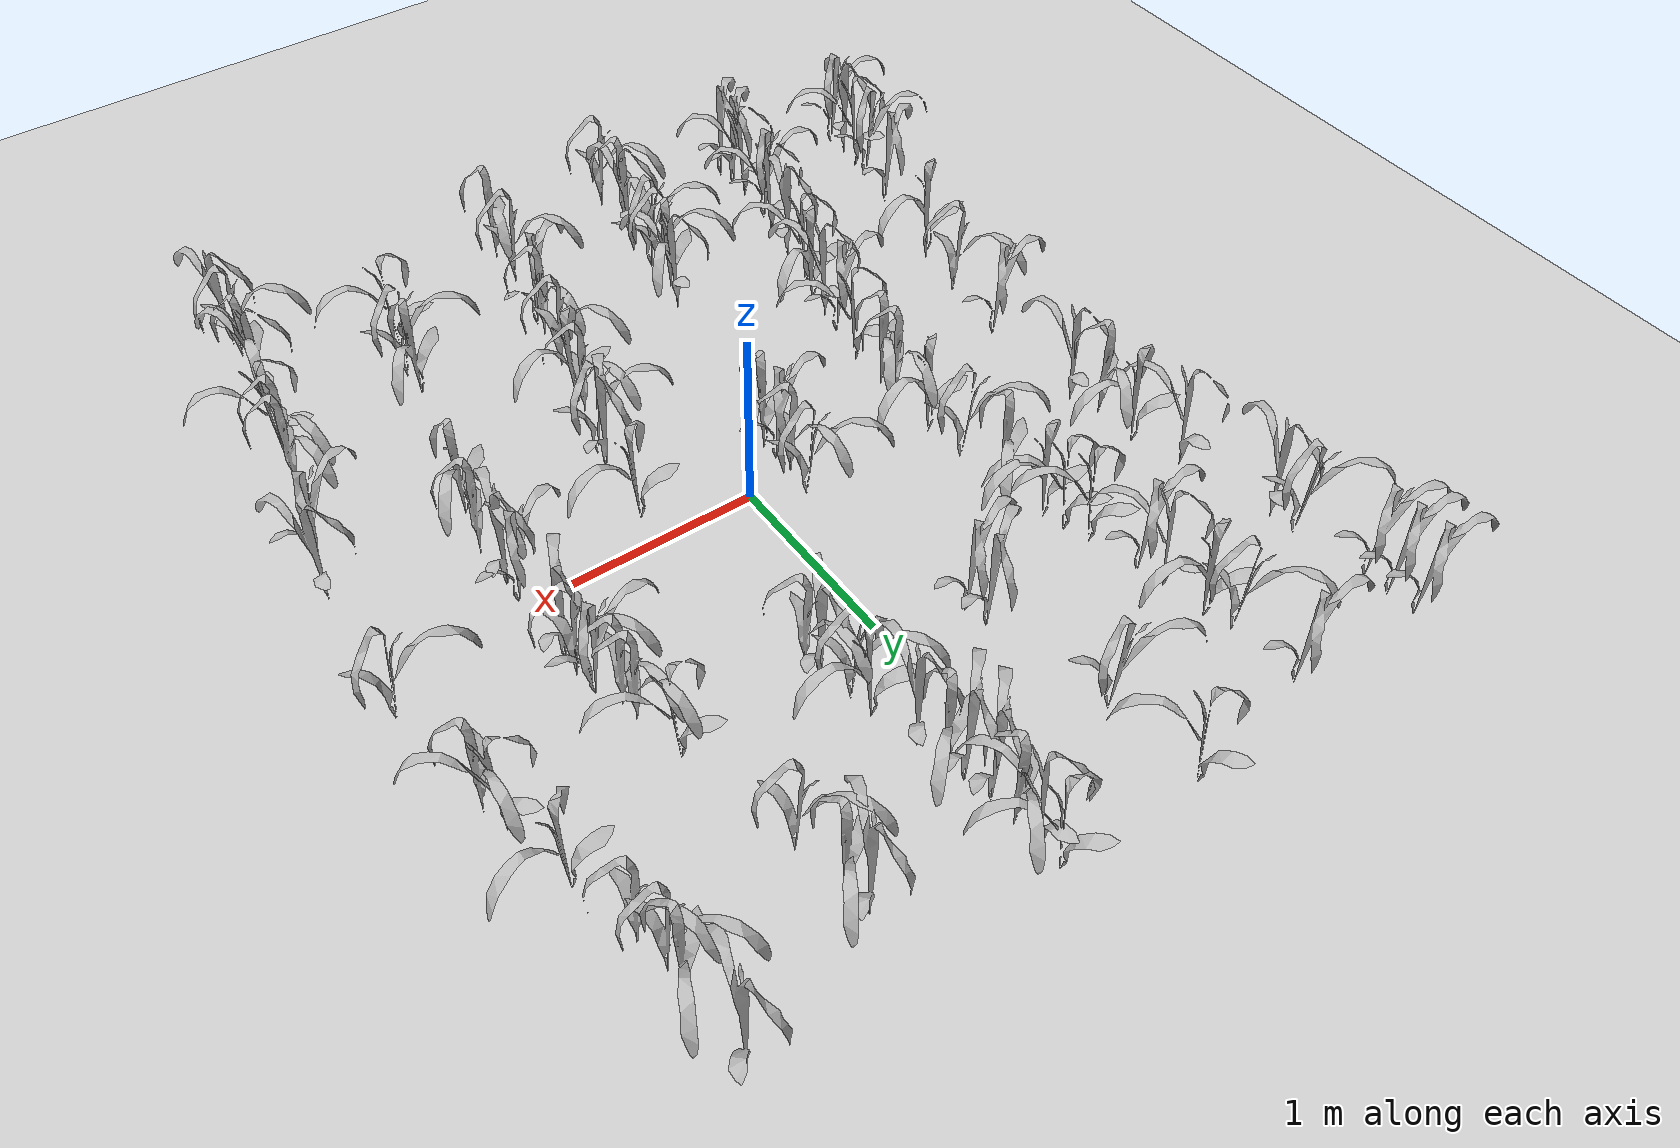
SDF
<sdf version="1.7">
 <world name="default">
  <light name="sun" type="directional">
   <cast_shadows>0</cast_shadows>
   <pose>0 0 10 0 -0 0</pose>
   <diffuse>0.8 0.8 0.8 1</diffuse>
   <specular>0.2 0.2 0.2 1</specular>
   <attenuation>
    <range>1000</range>
    <constant>0.9</constant>
    <linear>0.01</linear>
    <quadratic>0.001</quadratic>
   </attenuation>
   <direction>-0.5 0.1 -0.9</direction>
   <spot><inner_angle>0</inner_angle><outer_angle>0</outer_angle><falloff>0</falloff></spot>
  </light>
  <model name="ground_plane">
   <static>1</static>
   <link name="link">
    <collision name="collision">
     <geometry><plane><normal>0 0 1</normal><size>100 100</size></plane></geometry>
     <surface>
      <contact><collide_bitmask>65535</collide_bitmask></contact>
      <friction><ode><mu>100</mu><mu2>50</mu2></ode></friction>
     </surface>
    </collision>
    <visual name="visual">
     <cast_shadows>0</cast_shadows>
     <geometry><plane><normal>0 0 1</normal><size>100 100</size></plane></geometry>
     <material>
      <script><uri>file://media/materials/scripts/gazebo.material</uri><name>Gazebo/Grey</name></script>
     </material>
    </visual>
   </link>
  </model>
  <include>
   <uri>model://maize_01</uri>
   <pose>-2.079375577101997 -2.222403741474518 0.0 0.0 0.0 4.000444409817507</pose>
   <name>maize_01_0002</name>
   <static>true</static>
  </include>
  <include>
   <uri>model://maize_01</uri>
   <pose>-2.0852424416513204 -2.0938189449258022 0.0 0.0 0.0 5.14078925092759</pose>
   <name>maize_01_0003</name>
   <static>true</static>
  </include>
  <include>
   <uri>model://maize_01</uri>
   <pose>-2.0532540359956153 -1.9387642079187013 0.0 0.0 0.0 6.233470478932489</pose>
   <name>maize_01_0004</name>
   <static>true</static>
  </include>
  <include>
   <uri>model://maize_01</uri>
   <pose>-2.043969890188597 -1.8196729295025893 0.0 0.0 0.0 3.851217414104643</pose>
   <name>maize_01_0005</name>
   <static>true</static>
  </include>
  <include>
   <uri>model://maize_01</uri>
   <pose>-1.9911238335199313 -1.5523280486571183 0.0 0.0 0.0 4.550895039294937</pose>
   <name>maize_01_0007</name>
   <static>true</static>
  </include>
  <include>
   <uri>model://maize_01</uri>
   <pose>-1.8906773618721302 -1.0339776255452595 0.0 0.0 0.0 0.9738995447957747</pose>
   <name>maize_01_0011</name>
   <static>true</static>
  </include>
  <include>
   <uri>model://maize_01</uri>
   <pose>-1.7833717207848985 -0.6633733879423102 0.0 0.0 0.0 2.7538330074555395</pose>
   <name>maize_01_0014</name>
   <static>true</static>
  </include>
  <include>
   <uri>model://maize_01</uri>
   <pose>-1.7472005038601002 -0.2676168062972319 0.0 0.0 0.0 4.1838130907676145</pose>
   <name>maize_01_0017</name>
   <static>true</static>
  </include>
  <include>
   <uri>model://maize_01</uri>
   <pose>-1.7305788854654018 0.37496611936148044 0.0 0.0 0.0 5.477100278934137</pose>
   <name>maize_01_0021</name>
   <static>true</static>
  </include>
  <include>
   <uri>model://maize_01</uri>
   <pose>-1.775729328586141 0.5339229802712825 0.0 0.0 0.0 1.890207796054669</pose>
   <name>maize_01_0022</name>
   <static>true</static>
  </include>
  <include>
   <uri>model://maize_01</uri>
   <pose>-1.7908946502754204 0.7702321380362546 0.0 0.0 0.0 0.7039281579425569</pose>
   <name>maize_01_0024</name>
   <static>true</static>
  </include>
  <include>
   <uri>model://maize_01</uri>
   <pose>-1.877244749987015 1.0300160872417266 0.0 0.0 0.0 5.6705403562164465</pose>
   <name>maize_01_0026</name>
   <static>true</static>
  </include>
  <include>
   <uri>model://maize_01</uri>
   <pose>-1.9784390440392143 1.5507135069249514 0.0 0.0 0.0 5.140361216222742</pose>
   <name>maize_01_0030</name>
   <static>true</static>
  </include>
  <include>
   <uri>model://maize_01</uri>
   <pose>-1.9979959903143842 1.6824512296815093 0.0 0.0 0.0 3.3029873734836532</pose>
   <name>maize_01_0031</name>
   <static>true</static>
  </include>
  <include>
   <uri>model://maize_01</uri>
   <pose>-2.0651099349293287 2.071312429147221 0.0 0.0 0.0 3.8076125012652056</pose>
   <name>maize_01_0034</name>
   <static>true</static>
  </include>
  <include>
   <uri>model://maize_01</uri>
   <pose>-2.0700614544340046 2.2063874168866318 0.0 0.0 0.0 3.945731049469824</pose>
   <name>maize_01_0035</name>
   <static>true</static>
  </include>
  <include>
   <uri>model://maize_01</uri>
   <pose>-2.0797122143473765 2.356599216786647 0.0 0.0 0.0 3.913731160741</pose>
   <name>maize_01_0036</name>
   <static>true</static>
  </include>
  <include>
   <uri>model://maize_01</uri>
   <pose>-1.3427247491864722 -2.322056395350207 0.0 0.0 0.0 4.7599985569611665</pose>
   <name>maize_01_0039</name>
   <static>true</static>
  </include>
  <include>
   <uri>model://maize_01</uri>
   <pose>-1.3481891753458777 -2.193688408589522 0.0 0.0 0.0 4.737657758700795</pose>
   <name>maize_01_0040</name>
   <static>true</static>
  </include>
  <include>
   <uri>model://maize_01</uri>
   <pose>-1.3379227845917776 -2.0626978437227272 0.0 0.0 0.0 6.076563007810115</pose>
   <name>maize_01_0041</name>
   <static>true</static>
  </include>
  <include>
   <uri>model://maize_01</uri>
   <pose>-1.315131579135237 -1.8197094273647894 0.0 0.0 0.0 4.072374688858162</pose>
   <name>maize_01_0043</name>
   <static>true</static>
  </include>
  <include>
   <uri>model://maize_01</uri>
   <pose>-1.2694358286106795 -1.6830601526446163 0.0 0.0 0.0 5.993947248129754</pose>
   <name>maize_01_0044</name>
   <static>true</static>
  </include>
  <include>
   <uri>model://maize_01</uri>
   <pose>-1.2213117674946443 -1.4433927783361507 0.0 0.0 0.0 5.204021262819471</pose>
   <name>maize_01_0046</name>
   <static>true</static>
  </include>
  <include>
   <uri>model://maize_01</uri>
   <pose>-1.1573104050388796 -1.1806280778424376 0.0 0.0 0.0 6.165622348902113</pose>
   <name>maize_01_0048</name>
   <static>true</static>
  </include>
  <include>
   <uri>model://maize_01</uri>
   <pose>-1.1087090433335436 -1.0543788113257004 0.0 0.0 0.0 1.3317967863625255</pose>
   <name>maize_01_0049</name>
   <static>true</static>
  </include>
  <include>
   <uri>model://maize_01</uri>
   <pose>-1.0896966036341627 -0.9027556570019627 0.0 0.0 0.0 5.679272827582656</pose>
   <name>maize_01_0050</name>
   <static>true</static>
  </include>
  <include>
   <uri>model://maize_01</uri>
   <pose>-1.0694456782759494 -0.7622181624184386 0.0 0.0 0.0 4.270118058678236</pose>
   <name>maize_01_0051</name>
   <static>true</static>
  </include>
  <include>
   <uri>model://maize_01</uri>
   <pose>-1.0099003391729857 -0.5179004703834801 0.0 0.0 0.0 0.01256796265990488</pose>
   <name>maize_01_0053</name>
   <static>true</static>
  </include>
  <include>
   <uri>model://maize_01</uri>
   <pose>-0.9986197641765345 -0.2791661420625395 0.0 0.0 0.0 1.8108694666708531</pose>
   <name>maize_01_0055</name>
   <static>true</static>
  </include>
  <include>
   <uri>model://maize_01</uri>
   <pose>-0.9819061547981544 -0.15101522031345732 0.0 0.0 0.0 2.180579384262571</pose>
   <name>maize_01_0056</name>
   <static>true</static>
  </include>
  <include>
   <uri>model://maize_01</uri>
   <pose>-0.9926276280976362 0.12721512667077667 0.0 0.0 0.0 1.0429645512350458</pose>
   <name>maize_01_0058</name>
   <static>true</static>
  </include>
  <include>
   <uri>model://maize_01</uri>
   <pose>-1.0088998678328354 0.37552562697127906 0.0 0.0 0.0 3.3215276144274486</pose>
   <name>maize_01_0059</name>
   <static>true</static>
  </include>
  <include>
   <uri>model://maize_01</uri>
   <pose>-1.0447537485192437 0.6450508263419349 0.0 0.0 0.0 1.650090739251903</pose>
   <name>maize_01_0061</name>
   <static>true</static>
  </include>
  <include>
   <uri>model://maize_01</uri>
   <pose>-1.080574982661788 0.9142236322267873 0.0 0.0 0.0 0.8253472268535398</pose>
   <name>maize_01_0063</name>
   <static>true</static>
  </include>
  <include>
   <uri>model://maize_01</uri>
   <pose>-1.104563585316594 1.0391430177848786 0.0 0.0 0.0 0.23482521100167536</pose>
   <name>maize_01_0064</name>
   <static>true</static>
  </include>
  <include>
   <uri>model://maize_01</uri>
   <pose>-1.156478221811852 1.163446318413499 0.0 0.0 0.0 0.24212197174980948</pose>
   <name>maize_01_0065</name>
   <static>true</static>
  </include>
  <include>
   <uri>model://maize_01</uri>
   <pose>-1.2173185776407558 1.4397254361180494 0.0 0.0 0.0 4.086956040341534</pose>
   <name>maize_01_0067</name>
   <static>true</static>
  </include>
  <include>
   <uri>model://maize_01</uri>
   <pose>-1.2487640427481073 1.5737452623820132 0.0 0.0 0.0 5.890753896922879</pose>
   <name>maize_01_0068</name>
   <static>true</static>
  </include>
  <include>
   <uri>model://maize_01</uri>
   <pose>-1.2740977208636854 1.8130241088245227 0.0 0.0 0.0 0.7029141790029061</pose>
   <name>maize_01_0070</name>
   <static>true</static>
  </include>
  <include>
   <uri>model://maize_01</uri>
   <pose>-1.3235225118227172 1.9474085886815025 0.0 0.0 0.0 2.9879852436213663</pose>
   <name>maize_01_0071</name>
   <static>true</static>
  </include>
  <include>
   <uri>model://maize_01</uri>
   <pose>-1.3384585465086962 2.3212454069430586 0.0 0.0 0.0 4.000777528916371</pose>
   <name>maize_01_0074</name>
   <static>true</static>
  </include>
  <include>
   <uri>model://maize_01</uri>
   <pose>-0.5965143114718722 -2.453850050500727 0.0 0.0 0.0 2.9337747189075616</pose>
   <name>maize_01_0076</name>
   <static>true</static>
  </include>
  <include>
   <uri>model://maize_01</uri>
   <pose>-0.5914540589095175 -2.1925345700279877 0.0 0.0 0.0 2.2143305199690495</pose>
   <name>maize_01_0078</name>
   <static>true</static>
  </include>
  <include>
   <uri>model://maize_01</uri>
   <pose>-0.5700262741676284 -2.0918163673802486 0.0 0.0 0.0 5.499672195241358</pose>
   <name>maize_01_0079</name>
   <static>true</static>
  </include>
  <include>
   <uri>model://maize_01</uri>
   <pose>-0.5437027443529509 -1.81147108123349 0.0 0.0 0.0 3.70046007915688</pose>
   <name>maize_01_0081</name>
   <static>true</static>
  </include>
  <include>
   <uri>model://maize_01</uri>
   <pose>-0.5313593622277116 -1.684114611238707 0.0 0.0 0.0 3.1745961994268095</pose>
   <name>maize_01_0082</name>
   <static>true</static>
  </include>
  <include>
   <uri>model://maize_01</uri>
   <pose>-0.513002401737113 -1.554861415328658 0.0 0.0 0.0 1.667242584141264</pose>
   <name>maize_01_0083</name>
   <static>true</static>
  </include>
  <include>
   <uri>model://maize_01</uri>
   <pose>-0.4751534446372691 -1.4260292176945246 0.0 0.0 0.0 5.709971835812787</pose>
   <name>maize_01_0084</name>
   <static>true</static>
  </include>
  <include>
   <uri>model://maize_01</uri>
   <pose>-0.24165907107809342 -0.24682101557993036 0.0 0.0 0.0 1.5946374771286649</pose>
   <name>maize_01_0091</name>
   <static>true</static>
  </include>
  <include>
   <uri>model://maize_01</uri>
   <pose>-0.2504976908024283 -0.14246625900879722 0.0 0.0 0.0 4.288624515624429</pose>
   <name>maize_01_0092</name>
   <static>true</static>
  </include>
  <include>
   <uri>model://maize_01</uri>
   <pose>-0.22968086828702944 0.002168681795444334 0.0 0.0 0.0 2.498724064195009</pose>
   <name>maize_01_0093</name>
   <static>true</static>
  </include>
  <include>
   <uri>model://maize_01</uri>
   <pose>-0.22946728887459183 0.14711562765565495 0.0 0.0 0.0 3.3601489967271396</pose>
   <name>maize_01_0094</name>
   <static>true</static>
  </include>
  <include>
   <uri>model://maize_01</uri>
   <pose>-0.40042808344750574 1.1772970216426346 0.0 0.0 0.0 4.347834208589496</pose>
   <name>maize_01_0097</name>
   <static>true</static>
  </include>
  <include>
   <uri>model://maize_01</uri>
   <pose>-0.4255220009704758 1.2947155581052257 0.0 0.0 0.0 4.556909250173186</pose>
   <name>maize_01_0098</name>
   <static>true</static>
  </include>
  <include>
   <uri>model://maize_01</uri>
   <pose>-0.5645331761520275 1.95801633053934 0.0 0.0 0.0 3.600677117831202</pose>
   <name>maize_01_0103</name>
   <static>true</static>
  </include>
  <include>
   <uri>model://maize_01</uri>
   <pose>-0.6127570678122779 2.4590774261421307 0.0 0.0 0.0 6.250493551892881</pose>
   <name>maize_01_0107</name>
   <static>true</static>
  </include>
  <include>
   <uri>model://maize_01</uri>
   <pose>0.1410817586781002 -2.3685712310996565 0.0 0.0 0.0 2.115932924124484</pose>
   <name>maize_01_0109</name>
   <static>true</static>
  </include>
  <include>
   <uri>model://maize_01</uri>
   <pose>0.15018497820357896 -2.1266738359493274 0.0 0.0 0.0 3.074144972232469</pose>
   <name>maize_01_0111</name>
   <static>true</static>
  </include>
  <include>
   <uri>model://maize_01</uri>
   <pose>0.22393506139328384 -1.7352071708865848 0.0 0.0 0.0 4.613233273744188</pose>
   <name>maize_01_0112</name>
   <static>true</static>
  </include>
  <include>
   <uri>model://maize_01</uri>
   <pose>0.255484266830393 -1.6017371057672525 0.0 0.0 0.0 2.4084297946328035</pose>
   <name>maize_01_0113</name>
   <static>true</static>
  </include>
  <include>
   <uri>model://maize_01</uri>
   <pose>0.29526416771736447 -1.3451159091997982 0.0 0.0 0.0 2.9245068011858817</pose>
   <name>maize_01_0115</name>
   <static>true</static>
  </include>
  <include>
   <uri>model://maize_01</uri>
   <pose>0.36007489998397185 -1.0706848459043572 0.0 0.0 0.0 1.092723368702377</pose>
   <name>maize_01_0117</name>
   <static>true</static>
  </include>
  <include>
   <uri>model://maize_01</uri>
   <pose>0.3845054891644391 -0.9504329161880468 0.0 0.0 0.0 2.5879800059773017</pose>
   <name>maize_01_0118</name>
   <static>true</static>
  </include>
  <include>
   <uri>model://maize_01</uri>
   <pose>0.4636995713014734 -0.6807581995829127 0.0 0.0 0.0 3.728484174839742</pose>
   <name>maize_01_0120</name>
   <static>true</static>
  </include>
  <include>
   <uri>model://maize_01</uri>
   <pose>0.47655731061464973 -0.5662874333920972 0.0 0.0 0.0 5.031151403906722</pose>
   <name>maize_01_0121</name>
   <static>true</static>
  </include>
  <include>
   <uri>model://maize_01</uri>
   <pose>0.5193739691023934 -0.18270686392606977 0.0 0.0 0.0 0.9540924585360849</pose>
   <name>maize_01_0124</name>
   <static>true</static>
  </include>
  <include>
   <uri>model://maize_01</uri>
   <pose>0.4043671643566414 1.0244345672839548 0.0 0.0 0.0 2.460557455054587</pose>
   <name>maize_01_0130</name>
   <static>true</static>
  </include>
  <include>
   <uri>model://maize_01</uri>
   <pose>0.3760011425151953 1.1169365652784693 0.0 0.0 0.0 4.992851483810258</pose>
   <name>maize_01_0131</name>
   <static>true</static>
  </include>
  <include>
   <uri>model://maize_01</uri>
   <pose>0.3302670074978625 1.2771048957272426 0.0 0.0 0.0 3.134942081459756</pose>
   <name>maize_01_0132</name>
   <static>true</static>
  </include>
  <include>
   <uri>model://maize_01</uri>
   <pose>0.3120445216281578 1.3993741729767182 0.0 0.0 0.0 0.8106400272633866</pose>
   <name>maize_01_0133</name>
   <static>true</static>
  </include>
  <include>
   <uri>model://maize_01</uri>
   <pose>0.24792432127885272 1.6459876708131023 0.0 0.0 0.0 5.300197318728213</pose>
   <name>maize_01_0135</name>
   <static>true</static>
  </include>
  <include>
   <uri>model://maize_01</uri>
   <pose>0.21087243399243466 1.7928852048560944 0.0 0.0 0.0 1.5585753358021308</pose>
   <name>maize_01_0136</name>
   <static>true</static>
  </include>
  <include>
   <uri>model://maize_01</uri>
   <pose>0.18782232801836557 1.897879683509617 0.0 0.0 0.0 4.742234622365646</pose>
   <name>maize_01_0137</name>
   <static>true</static>
  </include>
  <include>
   <uri>model://maize_01</uri>
   <pose>0.15822243411966413 2.0383730472167154 0.0 0.0 0.0 4.755780934237726</pose>
   <name>maize_01_0138</name>
   <static>true</static>
  </include>
  <include>
   <uri>model://maize_01</uri>
   <pose>0.16841561758994011 2.1883596688736326 0.0 0.0 0.0 1.8233883569611933</pose>
   <name>maize_01_0139</name>
   <static>true</static>
  </include>
  <include>
   <uri>model://maize_01</uri>
   <pose>0.1373147319008124 2.3205998171074795 0.0 0.0 0.0 5.853429067487774</pose>
   <name>maize_01_0140</name>
   <static>true</static>
  </include>
  <include>
   <uri>model://maize_01</uri>
   <pose>0.140082916769583 2.448125751447338 0.0 0.0 0.0 0.2778631645673987</pose>
   <name>maize_01_0141</name>
   <static>true</static>
  </include>
  <include>
   <uri>model://maize_01</uri>
   <pose>0.9212705544046328 -1.9801079931867824 0.0 0.0 0.0 0.6901488815377737</pose>
   <name>maize_01_0146</name>
   <static>true</static>
  </include>
  <include>
   <uri>model://maize_01</uri>
   <pose>0.9920134783303053 -1.7449609868405254 0.0 0.0 0.0 3.6472063313377947</pose>
   <name>maize_01_0148</name>
   <static>true</static>
  </include>
  <include>
   <uri>model://maize_01</uri>
   <pose>0.9930044813457212 -1.5872793713513789 0.0 0.0 0.0 1.7557812969501965</pose>
   <name>maize_01_0149</name>
   <static>true</static>
  </include>
  <include>
   <uri>model://maize_01</uri>
   <pose>1.2057153006424643 -0.6758732058193148 0.0 0.0 0.0 1.772364609622845</pose>
   <name>maize_01_0156</name>
   <static>true</static>
  </include>
  <include>
   <uri>model://maize_01</uri>
   <pose>1.261978511045534 -0.4209507707312538 0.0 0.0 0.0 2.461754221593496</pose>
   <name>maize_01_0158</name>
   <static>true</static>
  </include>
  <include>
   <uri>model://maize_01</uri>
   <pose>1.2504287066142652 -0.160615903092367 0.0 0.0 0.0 5.262214438283567</pose>
   <name>maize_01_0160</name>
   <static>true</static>
  </include>
  <include>
   <uri>model://maize_01</uri>
   <pose>1.254524486201587 -0.038314933469057726 0.0 0.0 0.0 4.47450794384631</pose>
   <name>maize_01_0161</name>
   <static>true</static>
  </include>
  <include>
   <uri>model://maize_01</uri>
   <pose>1.24301416156244 0.3697028688827962 0.0 0.0 0.0 5.055623588568159</pose>
   <name>maize_01_0164</name>
   <static>true</static>
  </include>
  <include>
   <uri>model://maize_01</uri>
   <pose>1.2533056954876676 0.4811488484965483 0.0 0.0 0.0 2.9806762262456403</pose>
   <name>maize_01_0165</name>
   <static>true</static>
  </include>
  <include>
   <uri>model://maize_01</uri>
   <pose>1.2333613865023798 0.6144842225273585 0.0 0.0 0.0 4.170576719734847</pose>
   <name>maize_01_0166</name>
   <static>true</static>
  </include>
  <include>
   <uri>model://maize_01</uri>
   <pose>1.179718280463772 0.7572237532779408 0.0 0.0 0.0 2.5218360046892054</pose>
   <name>maize_01_0167</name>
   <static>true</static>
  </include>
  <include>
   <uri>model://maize_01</uri>
   <pose>1.1733071607674477 0.8643564348439875 0.0 0.0 0.0 2.528189439883457</pose>
   <name>maize_01_0168</name>
   <static>true</static>
  </include>
  <include>
   <uri>model://maize_01</uri>
   <pose>1.1046113715601806 1.1138580204658637 0.0 0.0 0.0 0.45702760622839045</pose>
   <name>maize_01_0170</name>
   <static>true</static>
  </include>
  <include>
   <uri>model://maize_01</uri>
   <pose>0.9728269897103831 1.7722074469773523 0.0 0.0 0.0 3.002192872721227</pose>
   <name>maize_01_0175</name>
   <static>true</static>
  </include>
  <include>
   <uri>model://maize_01</uri>
   <pose>0.9213257959578464 2.041636725526136 0.0 0.0 0.0 1.7830777640543642</pose>
   <name>maize_01_0177</name>
   <static>true</static>
  </include>
  <include>
   <uri>model://maize_01</uri>
   <pose>0.8944076211224395 2.179444402642672 0.0 0.0 0.0 5.09052684685795</pose>
   <name>maize_01_0178</name>
   <static>true</static>
  </include>
  <include>
   <uri>model://maize_01</uri>
   <pose>1.645537665637514 -2.5055876185981547 0.0 0.0 0.0 5.6825429490236</pose>
   <name>maize_01_0181</name>
   <static>true</static>
  </include>
  <include>
   <uri>model://maize_01</uri>
   <pose>1.645442189806269 -2.382923378614433 0.0 0.0 0.0 3.2992954596338473</pose>
   <name>maize_01_0182</name>
   <static>true</static>
  </include>
  <include>
   <uri>model://maize_01</uri>
   <pose>1.6742491828950858 -2.104855027935522 0.0 0.0 0.0 2.202616997364358</pose>
   <name>maize_01_0184</name>
   <static>true</static>
  </include>
  <include>
   <uri>model://maize_01</uri>
   <pose>1.6668165105043533 -1.976233131012714 0.0 0.0 0.0 5.886344127933665</pose>
   <name>maize_01_0185</name>
   <static>true</static>
  </include>
  <include>
   <uri>model://maize_01</uri>
   <pose>1.7577305331210322 -1.57351541615868 0.0 0.0 0.0 0.46593740700549835</pose>
   <name>maize_01_0188</name>
   <static>true</static>
  </include>
  <include>
   <uri>model://maize_01</uri>
   <pose>1.7713625062123577 -1.4510905725437306 0.0 0.0 0.0 2.596771913474325</pose>
   <name>maize_01_0189</name>
   <static>true</static>
  </include>
  <include>
   <uri>model://maize_01</uri>
   <pose>1.8055367260160065 -1.3078427698017991 0.0 0.0 0.0 2.540069809108976</pose>
   <name>maize_01_0190</name>
   <static>true</static>
  </include>
  <include>
   <uri>model://maize_01</uri>
   <pose>1.9150813465278445 -0.7941597746779568 0.0 0.0 0.0 4.510728783409027</pose>
   <name>maize_01_0194</name>
   <static>true</static>
  </include>
  <include>
   <uri>model://maize_01</uri>
   <pose>1.972668994890773 -0.5511680842664698 0.0 0.0 0.0 5.750418982252063</pose>
   <name>maize_01_0196</name>
   <static>true</static>
  </include>
  <include>
   <uri>model://maize_01</uri>
   <pose>2.014612944975018 0.24264410012901744 0.0 0.0 0.0 3.6821348772588247</pose>
   <name>maize_01_0202</name>
   <static>true</static>
  </include>
  <include>
   <uri>model://maize_01</uri>
   <pose>1.9287213436730388 0.880346656278261 0.0 0.0 0.0 2.331687990847991</pose>
   <name>maize_01_0207</name>
   <static>true</static>
  </include>
  <include>
   <uri>model://maize_01</uri>
   <pose>1.8875573536236976 1.0148984118180455 0.0 0.0 0.0 0.14363400988472685</pose>
   <name>maize_01_0208</name>
   <static>true</static>
  </include>
  <include>
   <uri>model://maize_01</uri>
   <pose>1.8050448097775993 1.4022499553286627 0.0 0.0 0.0 1.0848607401539585</pose>
   <name>maize_01_0211</name>
   <static>true</static>
  </include>
  <include>
   <uri>model://maize_01</uri>
   <pose>1.7251087648903587 1.7760274514151866 0.0 0.0 0.0 2.6993688089145356</pose>
   <name>maize_01_0214</name>
   <static>true</static>
  </include>
  <include>
   <uri>model://maize_01</uri>
   <pose>1.6829629343871 1.9319335446838166 0.0 0.0 0.0 3.012216968100026</pose>
   <name>maize_01_0215</name>
   <static>true</static>
  </include>
  <include>
   <uri>model://maize_01</uri>
   <pose>1.6815069464892107 2.0464837579304294 0.0 0.0 0.0 1.9005850818067047</pose>
   <name>maize_01_0216</name>
   <static>true</static>
  </include>
  <include>
   <uri>model://maize_01</uri>
   <pose>1.6492439013295659 2.4334523018364984 0.0 0.0 0.0 5.260400894268929</pose>
   <name>maize_01_0219</name>
   <static>true</static>
  </include>
  <gravity>0 0 -9.8</gravity>
  <magnetic_field>6e-06 2.3e-05 -4.2e-05</magnetic_field>
  <atmosphere type="adiabatic"/>
  <physics type="ode">
   <max_step_size>0.001</max_step_size>
   <real_time_factor>1</real_time_factor>
   <real_time_update_rate>1000</real_time_update_rate>
  </physics>
  <scene><ambient>0.4 0.4 0.4 1</ambient><background>0.7 0.7 0.7 1</background><shadows>0</shadows></scene>
  <audio><device>default</device></audio>
  <spherical_coordinates>
   <surface_model>EARTH_WGS84</surface_model>
   <latitude_deg>0</latitude_deg>
   <longitude_deg>0</longitude_deg>
   <elevation>0</elevation>
   <heading_deg>0</heading_deg>
  </spherical_coordinates>
 </world>
</sdf>

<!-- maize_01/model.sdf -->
<sdf version="1.6">
  <model name='maize_01'>
    <static>true</static>
    <pose frame=''>0 0 0.05 0 -0 0</pose>
    <link name='maize_01_link'>
      <inertial>
        <pose>0 0 0.01 0 0 0</pose>
        <mass>0.3</mass>
        <inertia>
          <ixx>0.0033416667</ixx>
          <ixy>0</ixy>
          <ixz>0</ixz>
          <iyy>0.0033416667</iyy>
          <iyz>0</iyz>
          <izz>0.000016666667</izz>
        </inertia>
        <pose>0 0 0.1 0 0 0</pose>
      </inertial>
      <collision name='collision'>
        <pose>0 0 0.2 0 -0 0</pose>
        <geometry>
          <box>
            <size>0.02 0.02 0.4</size>
          </box>
        </geometry>
        <max_contacts>10</max_contacts>
        <surface>
          <contact>
            <ode/>
          </contact>
          <bounce/>
          <friction>
            <ode>
              <mu>10</mu>
              <mu2>10</mu2>
            </ode>
          </friction>
        </surface>
      </collision>
      <visual name='visual'>
        <geometry>
          <mesh>
            <uri>model://maize_01/meshes/maize_01.dae</uri>
            <scale>0.683166466464586 0.683166466464586 0.683166466464586</scale>
          </mesh>
        </geometry>
      </visual>
      <self_collide>0</self_collide>
      <enable_wind>0</enable_wind>
      <kinematic>0</kinematic>
    </link>
  </model>
</sdf>
